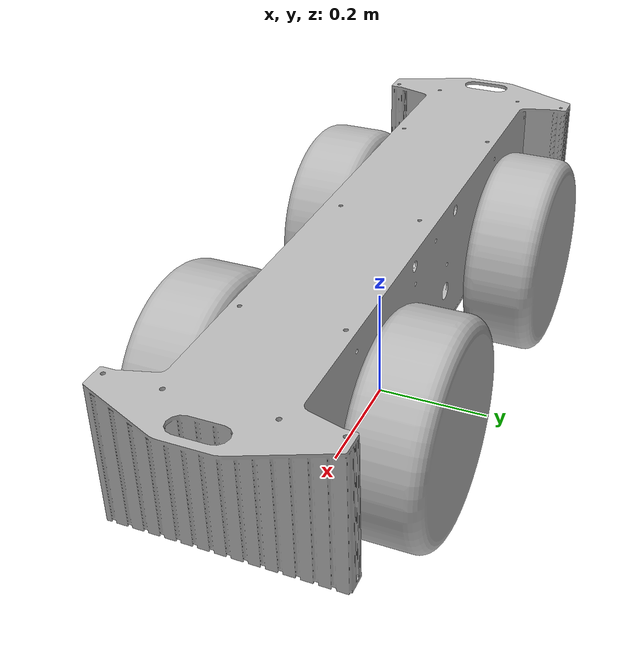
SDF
<sdf version='1.7'>
  <model name='sly'>
    <link name='base_link'>
      <inertial>
        <pose>-1.6e-05 -0.000136 0.236431 0 -0 0</pose>
        <mass>45</mass>
        <inertia>
          <ixx>2.9337</ixx>
          <ixy>0.0080257</ixy>
          <ixz>-0.00019718</ixz>
          <iyy>11.131</iyy>
          <iyz>-0.0012284</iyz>
          <izz>8.5524</izz>
        </inertia>
      </inertial>
      <collision name='base_link_collision'>
        <pose>0 0 0 0 -0 0</pose>
        <geometry>
          <mesh>
            <scale>1 1 1</scale>
            <uri>model://sly/meshes/base_link.STL</uri>
          </mesh>
        </geometry>
      </collision>
      <visual name='base_link_visual'>
        <pose>0 0 0 0 -0 0</pose>
        <geometry>
          <mesh>
            <scale>1 1 1</scale>
            <uri>model://sly/meshes/base_link.STL</uri>
          </mesh>
        </geometry>
      </visual>
    </link>
    <joint name='axial_0_0' type='revolute'>
      <pose relative_to='base_link'>0.2761 -0.17457 0.1778 1.5708 -0 -3.14159</pose>
      <parent>base_link</parent>
      <child>wheel_0</child>
      <axis>
        <xyz>0 0 -1</xyz>
        <limit>
          <lower>-1e+16</lower>
          <upper>1e+16</upper>
        </limit>
        <dynamics>
          <spring_reference>0</spring_reference>
          <spring_stiffness>0</spring_stiffness>
        </dynamics>
      </axis>
    </joint>
    <link name='wheel_0'>
      <pose relative_to='axial_0_0'>0 0 0 0 -0 0</pose>
      <inertial>
        <pose>0 0 0 0 -0 0</pose>
        <mass>6.5</mass>
        <inertia>
          <ixx>0.058691</ixx>
          <ixy>0</ixy>
          <ixz>0</ixz>
          <iyy>0.58691</iyy>
          <iyz>0</iyz>
          <izz>0.10055</izz>
        </inertia>
      </inertial>
      <collision name='wheel_0_collision'>
        <pose>0 0 0 0 -0 0</pose>
        <geometry>
          <mesh>
            <scale>1 1 1</scale>
            <uri>model://sly/meshes/wheel_0.STL</uri>
          </mesh>
        </geometry>
      </collision>
      <visual name='wheel_0_visual'>
        <pose>0 0 0 0 -0 0</pose>
        <geometry>
          <mesh>
            <scale>1 1 1</scale>
            <uri>model://sly/meshes/wheel_0.STL</uri>
          </mesh>
        </geometry>
      </visual>
    </link>
    <joint name='axial_0_1' type='revolute'>
      <pose relative_to='base_link'>0.276098 0.174678 0.1778 -1.5708 0 0</pose>
      <parent>base_link</parent>
      <child>wheel_1</child>
      <axis>
        <xyz>0 0 -1</xyz>
        <limit>
          <lower>-1e+16</lower>
          <upper>1e+16</upper>
        </limit>
        <dynamics>
          <spring_reference>0</spring_reference>
          <spring_stiffness>0</spring_stiffness>
        </dynamics>
      </axis>
    </joint>
    <link name='wheel_1'>
      <pose relative_to='axial_0_1'>0 0 0 0 -0 0</pose>
      <inertial>
        <pose>0 0 0 0 -0 0</pose>
        <mass>6.5</mass>
        <inertia>
          <ixx>0.058691</ixx>
          <ixy>0</ixy>
          <ixz>0</ixz>
          <iyy>0.058691</iyy>
          <iyz>0</iyz>
          <izz>0.10055</izz>
        </inertia>
      </inertial>
      <collision name='wheel_1_collision'>
        <pose>0 0 0 0 -0 0</pose>
        <geometry>
          <mesh>
            <scale>1 1 1</scale>
            <uri>model://sly/meshes/wheel_1.STL</uri>
          </mesh>
        </geometry>
      </collision>
      <visual name='wheel_1_visual'>
        <pose>0 0 0 0 -0 0</pose>
        <geometry>
          <mesh>
            <scale>1 1 1</scale>
            <uri>model://sly/meshes/wheel_1.STL</uri>
          </mesh>
        </geometry>
      </visual>
    </link>
    <joint name='axial_1_0' type='revolute'>
      <pose relative_to='base_link'>-0.2761 0.17448 0.1778 -1.5708 0 0</pose>
      <parent>base_link</parent>
      <child>wheel_2</child>
      <axis>
        <xyz>0 0 -1</xyz>
        <limit>
          <lower>-1e+16</lower>
          <upper>1e+16</upper>
        </limit>
        <dynamics>
          <spring_reference>0</spring_reference>
          <spring_stiffness>0</spring_stiffness>
        </dynamics>
      </axis>
    </joint>
    <link name='wheel_2'>
      <pose relative_to='axial_1_0'>0 0 0 0 -0 0</pose>
      <inertial>
        <pose>0 0 0 0 -0 0</pose>
        <mass>6.5</mass>
        <inertia>
          <ixx>0.058691</ixx>
          <ixy>0</ixy>
          <ixz>0</ixz>
          <iyy>0.058691</iyy>
          <iyz>0</iyz>
          <izz>0.10055</izz>
        </inertia>
      </inertial>
      <collision name='wheel_2_collision'>
        <pose>0 0 0 0 -0 0</pose>
        <geometry>
          <mesh>
            <scale>1 1 1</scale>
            <uri>model://sly/meshes/wheel_2.STL</uri>
          </mesh>
        </geometry>
      </collision>
      <visual name='wheel_2_visual'>
        <pose>0 0 0 0 -0 0</pose>
        <geometry>
          <mesh>
            <scale>1 1 1</scale>
            <uri>model://sly/meshes/wheel_2.STL</uri>
          </mesh>
        </geometry>
      </visual>
    </link>
    <joint name='axial_1_1' type='revolute'>
      <pose relative_to='base_link'>-0.2761 -0.17477 0.1778 -1.5708 0 0</pose>
      <parent>base_link</parent>
      <child>wheel_3</child>
      <axis>
        <xyz>0 0 -1</xyz>
        <limit>
          <lower>-1e+16</lower>
          <upper>1e+16</upper>
        </limit>
        <dynamics>
          <spring_reference>0</spring_reference>
          <spring_stiffness>0</spring_stiffness>
        </dynamics>
      </axis>
    </joint>
    <link name='wheel_3'>
      <pose relative_to='axial_1_1'>0 0 0 0 -0 0</pose>
      <inertial>
        <pose>0 0 0 0 -0 0</pose>
        <mass>6.5</mass>
        <inertia>
          <ixx>0.058691</ixx>
          <ixy>0</ixy>
          <ixz>0</ixz>
          <iyy>0.058691</iyy>
          <iyz>0</iyz>
          <izz>0.10055</izz>
        </inertia>
      </inertial>
      <collision name='wheel_3_collision'>
        <pose>0 0 0 0 -0 0</pose>
        <geometry>
          <mesh>
            <scale>1 1 1</scale>
            <uri>model://sly/meshes/wheel_3.STL</uri>
          </mesh>
        </geometry>
      </collision>
      <visual name='wheel_3_visual'>
        <pose>0 0 0 0 -0 0</pose>
        <geometry>
          <mesh>
            <scale>1 1 1</scale>
            <uri>model://sly/meshes/wheel_3.STL</uri>
          </mesh>
        </geometry>
      </visual>
    </link>
  </model>
</sdf>
